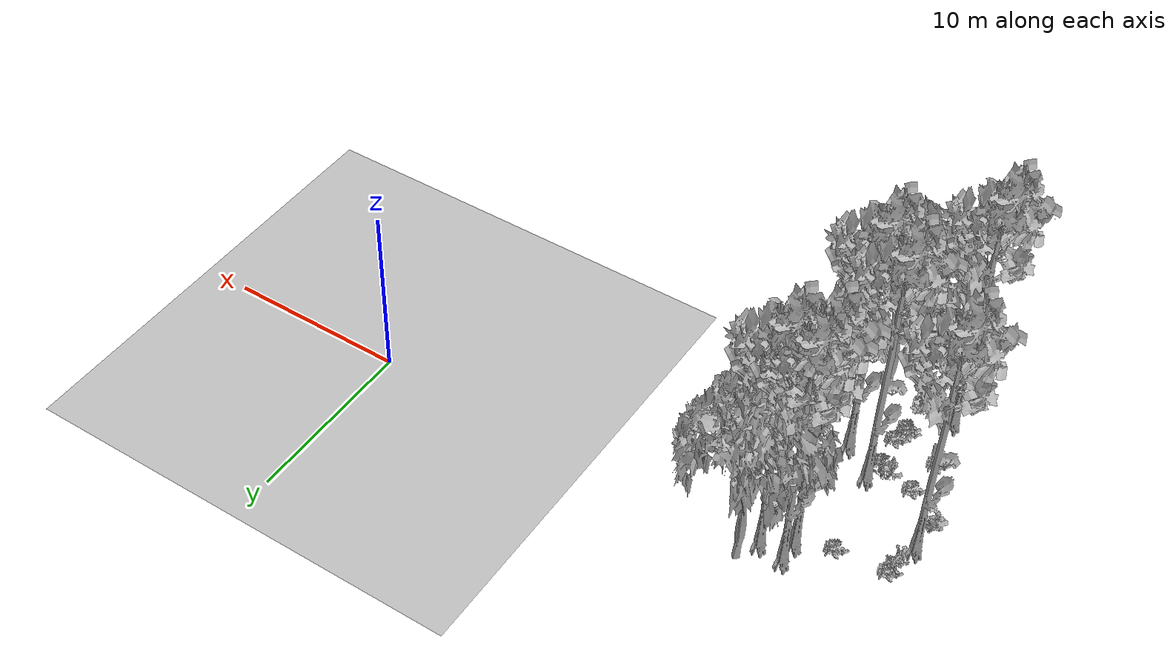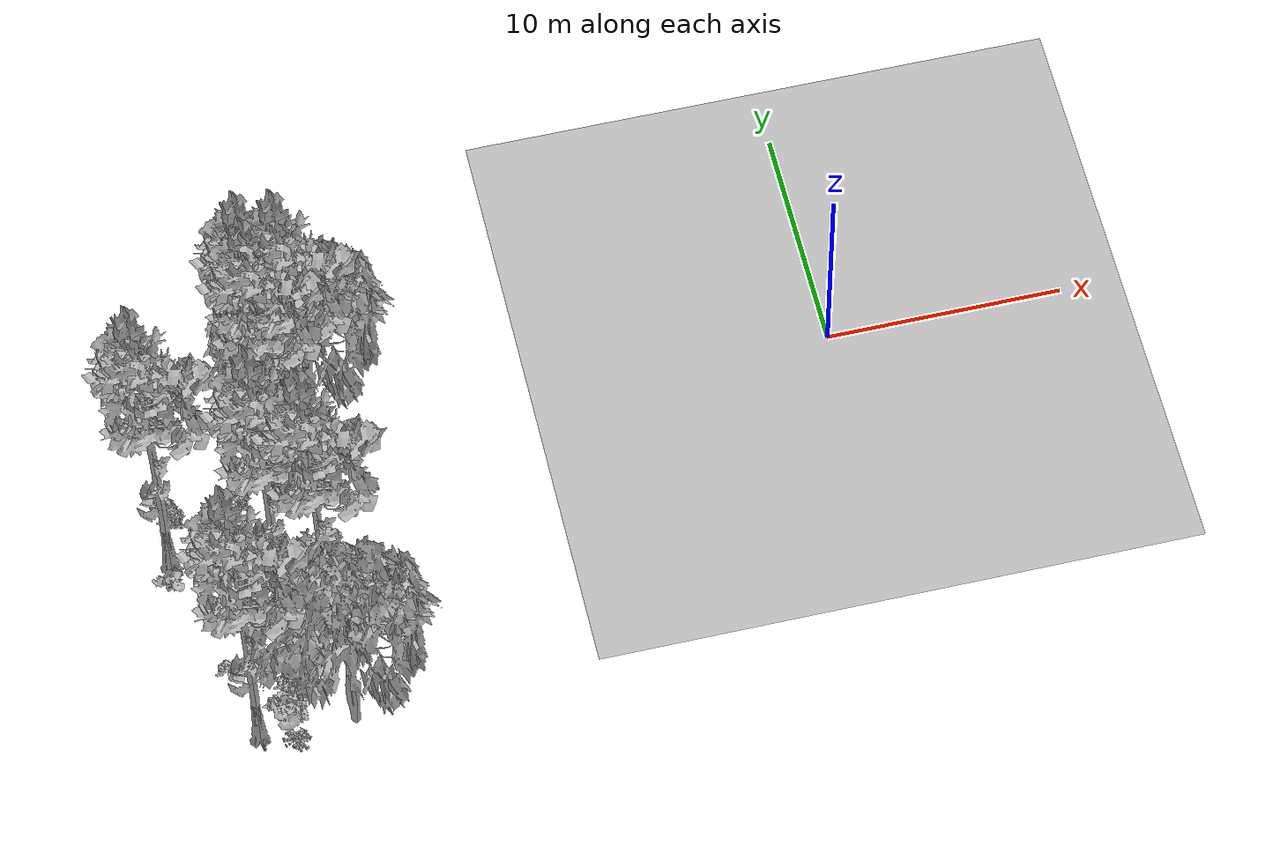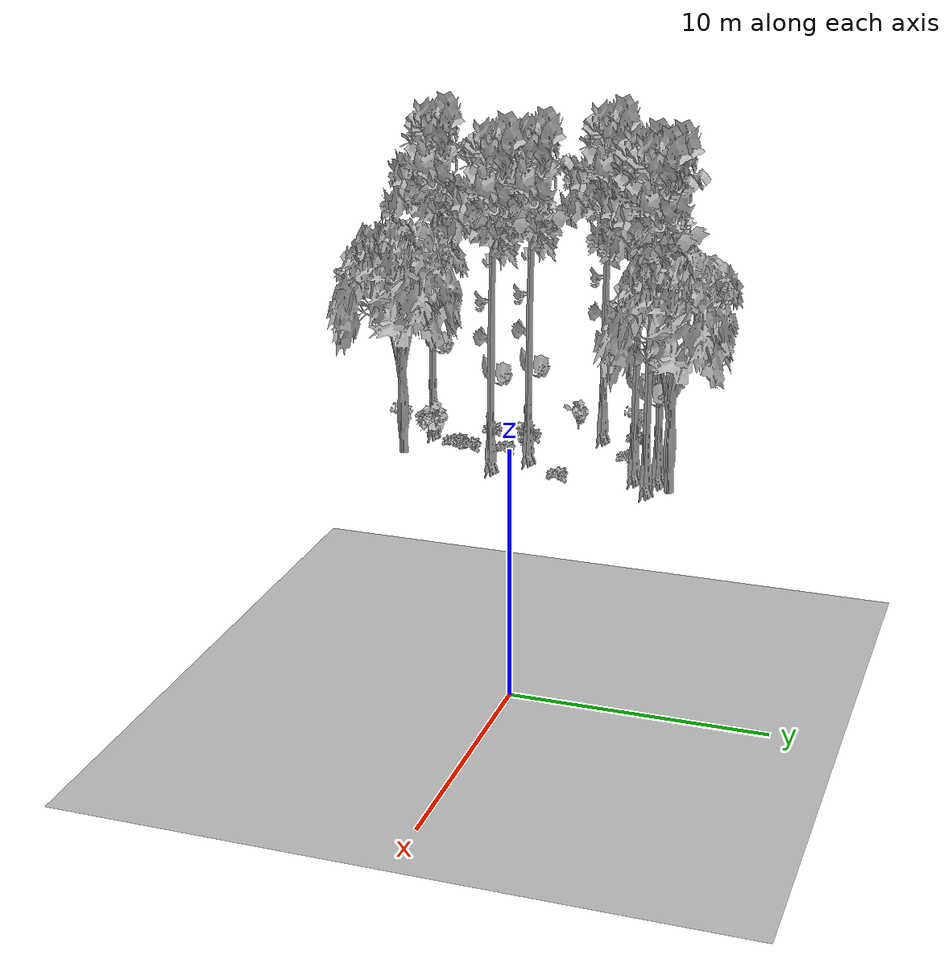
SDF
<sdf version="1.7">
 <world name="default">
  <model name="ground_plane">
   <static>1</static>
   <link name="link">
    <collision name="collision">
     <pose>-50 0 0 0 -0 0</pose>
     <geometry><plane><normal>0 0 1</normal><size>80 80</size></plane></geometry>
     <surface><contact><ode><min_depth>0.01</min_depth><max_vel>0</max_vel></ode></contact></surface>
    </collision>
    <visual name="grass">
     <cast_shadows>0</cast_shadows>
     <geometry>
      <mesh>
       <scale>0.46714285714285714 0.46714285714285714 0.1</scale>
       <uri>file://grass_plane/meshes/grass_plane.dae</uri>
      </mesh>
     </geometry>
    </visual>
   </link>
  </model>
  <model name="Tree 47">
   <static>1</static>
   <pose>-28.473981116800054 -4.297335617777627 0 1.57079 -0 0</pose>
   <link name="link">
    <collision name="collision">
     <geometry><mesh><scale>3.5 5 3.5</scale><uri>model://tree_9/meshes/tree_9.obj</uri></mesh></geometry>
    </collision>
    <visual name="visual">
     <geometry><mesh><scale>3.5 5 3.5</scale><uri>model://tree_9/meshes/tree_9.obj</uri></mesh></geometry>
    </visual>
   </link>
  </model>
  <model name="Tree 65">
   <static>1</static>
   <pose>-24.455759736934468 -7.049769191935965 0 1.57079 -0 0</pose>
   <link name="link">
    <collision name="collision">
     <geometry><mesh><scale>3.5 5 3.5</scale><uri>model://tree_9/meshes/tree_9.obj</uri></mesh></geometry>
    </collision>
    <visual name="visual">
     <geometry><mesh><scale>3.5 5 3.5</scale><uri>model://tree_9/meshes/tree_9.obj</uri></mesh></geometry>
    </visual>
   </link>
  </model>
  <model name="Tree 202">
   <static>1</static>
   <pose>-26.467997974384552 -12.856794796772235 0 1.57079 -0 0</pose>
   <link name="link">
    <collision name="collision">
     <geometry><mesh><scale>3.5 5 3.5</scale><uri>model://tree_9/meshes/tree_9.obj</uri></mesh></geometry>
    </collision>
    <visual name="visual">
     <geometry><mesh><scale>3.5 5 3.5</scale><uri>model://tree_9/meshes/tree_9.obj</uri></mesh></geometry>
    </visual>
   </link>
  </model>
  <model name="Tree 226">
   <static>1</static>
   <pose>-22.682943293214567 -13.02495338239014 0 1.57079 -0 0</pose>
   <link name="link">
    <collision name="collision">
     <geometry><mesh><scale>3.5 5 3.5</scale><uri>model://tree_2/meshes/tree_2.obj</uri></mesh></geometry>
    </collision>
    <visual name="visual">
     <geometry><mesh><scale>3.5 5 3.5</scale><uri>model://tree_2/meshes/tree_2.obj</uri></mesh></geometry>
    </visual>
   </link>
  </model>
  <model name="Tree 279">
   <static>1</static>
   <pose>-22.111618929098086 -0.3736685411259657 0 1.57079 -0 0</pose>
   <link name="link">
    <collision name="collision">
     <geometry><mesh><scale>3.5 5 3.5</scale><uri>model://tree_9/meshes/tree_9.obj</uri></mesh></geometry>
    </collision>
    <visual name="visual">
     <geometry><mesh><scale>3.5 5 3.5</scale><uri>model://tree_9/meshes/tree_9.obj</uri></mesh></geometry>
    </visual>
   </link>
  </model>
  <model name="Tree 405">
   <static>1</static>
   <pose>-23.509181221828143 -1.329202708372506 0 1.57079 -0 0</pose>
   <link name="link">
    <collision name="collision">
     <geometry><mesh><scale>3.5 5 3.5</scale><uri>model://tree_9/meshes/tree_9.obj</uri></mesh></geometry>
    </collision>
    <visual name="visual">
     <geometry><mesh><scale>3.5 5 3.5</scale><uri>model://tree_9/meshes/tree_9.obj</uri></mesh></geometry>
    </visual>
   </link>
  </model>
  <model name="Tree 442">
   <static>1</static>
   <pose>-21.640686054320977 0.8973746995717278 0 1.57079 -0 0</pose>
   <link name="link">
    <collision name="collision">
     <geometry><mesh><scale>3.5 5 3.5</scale><uri>model://tree_2/meshes/tree_2.obj</uri></mesh></geometry>
    </collision>
    <visual name="visual">
     <geometry><mesh><scale>3.5 5 3.5</scale><uri>model://tree_2/meshes/tree_2.obj</uri></mesh></geometry>
    </visual>
   </link>
  </model>
  <model name="Tree 487">
   <static>1</static>
   <pose>-23.506181821844677 -0.12222299819284643 0 1.57079 -0 0</pose>
   <link name="link">
    <collision name="collision">
     <geometry><mesh><scale>3.5 5 3.5</scale><uri>model://tree_9/meshes/tree_9.obj</uri></mesh></geometry>
    </collision>
    <visual name="visual">
     <geometry><mesh><scale>3.5 5 3.5</scale><uri>model://tree_9/meshes/tree_9.obj</uri></mesh></geometry>
    </visual>
   </link>
  </model>
  <model name="Tree 544">
   <static>1</static>
   <pose>-22.760079719429864 -8.455850397169655 0 1.57079 -0 0</pose>
   <link name="link">
    <collision name="collision">
     <geometry><mesh><scale>3.5 5 3.5</scale><uri>model://tree_9/meshes/tree_9.obj</uri></mesh></geometry>
    </collision>
    <visual name="visual">
     <geometry><mesh><scale>3.5 5 3.5</scale><uri>model://tree_9/meshes/tree_9.obj</uri></mesh></geometry>
    </visual>
   </link>
  </model>
  <model name="Bush 145">
   <static>1</static>
   <pose>-25.172635310171618 -12.591653628869768 0 1.57079 -0 0</pose>
   <link name="link">
    <collision name="collision">
     <geometry><mesh><scale>2 2 2</scale><uri>model://bush_1/meshes/bush_1.obj</uri></mesh></geometry>
     <surface><contact><collide_without_contact>false</collide_without_contact></contact></surface>
    </collision>
    <visual name="visual">
     <geometry><mesh><scale>2 2 2</scale><uri>model://bush_1/meshes/bush_1.obj</uri></mesh></geometry>
    </visual>
   </link>
  </model>
  <model name="Bush 165">
   <static>1</static>
   <pose>-24.66507856965093 -8.340748297798903 0 1.57079 -0 0</pose>
   <link name="link">
    <collision name="collision">
     <geometry><mesh><scale>2 2 2</scale><uri>model://bush_2/meshes/bush_2.obj</uri></mesh></geometry>
     <surface><contact><collide_without_contact>false</collide_without_contact></contact></surface>
    </collision>
    <visual name="visual">
     <geometry><mesh><scale>2 2 2</scale><uri>model://bush_2/meshes/bush_2.obj</uri></mesh></geometry>
    </visual>
   </link>
  </model>
  <model name="Bush 234">
   <static>1</static>
   <pose>-25.06145124724491 -13.850027889576797 0 1.57079 -0 0</pose>
   <link name="link">
    <collision name="collision">
     <geometry><mesh><scale>2 2 2</scale><uri>model://bush_5/meshes/bush_5.obj</uri></mesh></geometry>
     <surface><contact><collide_without_contact>false</collide_without_contact></contact></surface>
    </collision>
    <visual name="visual">
     <geometry><mesh><scale>2 2 2</scale><uri>model://bush_5/meshes/bush_5.obj</uri></mesh></geometry>
    </visual>
   </link>
  </model>
  <model name="Bush 366">
   <static>1</static>
   <pose>-24.734910416278915 -11.16621370994799 0 1.57079 -0 0</pose>
   <link name="link">
    <collision name="collision">
     <geometry><mesh><scale>2 2 2</scale><uri>model://bush_2/meshes/bush_2.obj</uri></mesh></geometry>
     <surface><contact><collide_without_contact>false</collide_without_contact></contact></surface>
    </collision>
    <visual name="visual">
     <geometry><mesh><scale>2 2 2</scale><uri>model://bush_2/meshes/bush_2.obj</uri></mesh></geometry>
    </visual>
   </link>
  </model>
  <model name="Bush 434">
   <static>1</static>
   <pose>-27.04612811692126 -9.782640853765827 0 1.57079 -0 0</pose>
   <link name="link">
    <collision name="collision">
     <geometry><mesh><scale>2 2 2</scale><uri>model://bush_2/meshes/bush_2.obj</uri></mesh></geometry>
     <surface><contact><collide_without_contact>false</collide_without_contact></contact></surface>
    </collision>
    <visual name="visual">
     <geometry><mesh><scale>2 2 2</scale><uri>model://bush_2/meshes/bush_2.obj</uri></mesh></geometry>
    </visual>
   </link>
  </model>
  <model name="Bush 518">
   <static>1</static>
   <pose>-28.528243665955674 -5.605970494326833 0 1.57079 -0 0</pose>
   <link name="link">
    <collision name="collision">
     <geometry><mesh><scale>2 2 2</scale><uri>model://bush_0/meshes/bush_0.obj</uri></mesh></geometry>
     <surface><contact><collide_without_contact>false</collide_without_contact></contact></surface>
    </collision>
    <visual name="visual">
     <geometry><mesh><scale>2 2 2</scale><uri>model://bush_0/meshes/bush_0.obj</uri></mesh></geometry>
    </visual>
   </link>
  </model>
  <model name="Bush 528">
   <static>1</static>
   <pose>-22.016069213220394 -4.782653132809969 0 1.57079 -0 0</pose>
   <link name="link">
    <collision name="collision">
     <geometry><mesh><scale>2 2 2</scale><uri>model://bush_2/meshes/bush_2.obj</uri></mesh></geometry>
     <surface><contact><collide_without_contact>false</collide_without_contact></contact></surface>
    </collision>
    <visual name="visual">
     <geometry><mesh><scale>2 2 2</scale><uri>model://bush_2/meshes/bush_2.obj</uri></mesh></geometry>
    </visual>
   </link>
  </model>
  <model name="Bush 571">
   <static>1</static>
   <pose>-24.55187151750802 -10.125897331264582 0 1.57079 -0 0</pose>
   <link name="link">
    <collision name="collision">
     <geometry><mesh><scale>2 2 2</scale><uri>model://bush_2/meshes/bush_2.obj</uri></mesh></geometry>
     <surface><contact><collide_without_contact>false</collide_without_contact></contact></surface>
    </collision>
    <visual name="visual">
     <geometry><mesh><scale>2 2 2</scale><uri>model://bush_2/meshes/bush_2.obj</uri></mesh></geometry>
    </visual>
   </link>
  </model>
  <model name="Bush 572">
   <static>1</static>
   <pose>-24.889583498476362 -10.895217612707533 0 1.57079 -0 0</pose>
   <link name="link">
    <collision name="collision">
     <geometry><mesh><scale>2 2 2</scale><uri>model://bush_2/meshes/bush_2.obj</uri></mesh></geometry>
     <surface><contact><collide_without_contact>false</collide_without_contact></contact></surface>
    </collision>
    <visual name="visual">
     <geometry><mesh><scale>2 2 2</scale><uri>model://bush_2/meshes/bush_2.obj</uri></mesh></geometry>
    </visual>
   </link>
  </model>
  <model name="Bush 576">
   <static>1</static>
   <pose>-28.260313342318558 -2.2984138720026976 0 1.57079 -0 0</pose>
   <link name="link">
    <collision name="collision">
     <geometry><mesh><scale>2 2 2</scale><uri>model://bush_5/meshes/bush_5.obj</uri></mesh></geometry>
     <surface><contact><collide_without_contact>false</collide_without_contact></contact></surface>
    </collision>
    <visual name="visual">
     <geometry><mesh><scale>2 2 2</scale><uri>model://bush_5/meshes/bush_5.obj</uri></mesh></geometry>
    </visual>
   </link>
  </model>
  <model name="Bush 587">
   <static>1</static>
   <pose>-25.326488278468403 -7.549713174107168 0 1.57079 -0 0</pose>
   <link name="link">
    <collision name="collision">
     <geometry><mesh><scale>2 2 2</scale><uri>model://bush_4/meshes/bush_4.obj</uri></mesh></geometry>
     <surface><contact><collide_without_contact>false</collide_without_contact></contact></surface>
    </collision>
    <visual name="visual">
     <geometry><mesh><scale>2 2 2</scale><uri>model://bush_4/meshes/bush_4.obj</uri></mesh></geometry>
    </visual>
   </link>
  </model>
  <model name="Bush 588">
   <static>1</static>
   <pose>-26.759086461882926 -7.611060099152567 0 1.57079 -0 0</pose>
   <link name="link">
    <collision name="collision">
     <geometry><mesh><scale>2 2 2</scale><uri>model://bush_2/meshes/bush_2.obj</uri></mesh></geometry>
     <surface><contact><collide_without_contact>false</collide_without_contact></contact></surface>
    </collision>
    <visual name="visual">
     <geometry><mesh><scale>2 2 2</scale><uri>model://bush_2/meshes/bush_2.obj</uri></mesh></geometry>
    </visual>
   </link>
  </model>
  <model name="Bush 596">
   <static>1</static>
   <pose>-28.057751992804818 -2.36510690510854 0 1.57079 -0 0</pose>
   <link name="link">
    <collision name="collision">
     <geometry><mesh><scale>2 2 2</scale><uri>model://bush_2/meshes/bush_2.obj</uri></mesh></geometry>
     <surface><contact><collide_without_contact>false</collide_without_contact></contact></surface>
    </collision>
    <visual name="visual">
     <geometry><mesh><scale>2 2 2</scale><uri>model://bush_2/meshes/bush_2.obj</uri></mesh></geometry>
    </visual>
   </link>
  </model>
  <model name="Bush 600">
   <static>1</static>
   <pose>-25.29851352965577 -2.1521512021090246 0 1.57079 -0 0</pose>
   <link name="link">
    <collision name="collision">
     <geometry><mesh><scale>2 2 2</scale><uri>model://bush_2/meshes/bush_2.obj</uri></mesh></geometry>
     <surface><contact><collide_without_contact>false</collide_without_contact></contact></surface>
    </collision>
    <visual name="visual">
     <geometry><mesh><scale>2 2 2</scale><uri>model://bush_2/meshes/bush_2.obj</uri></mesh></geometry>
    </visual>
   </link>
  </model>
 </world>
</sdf>
